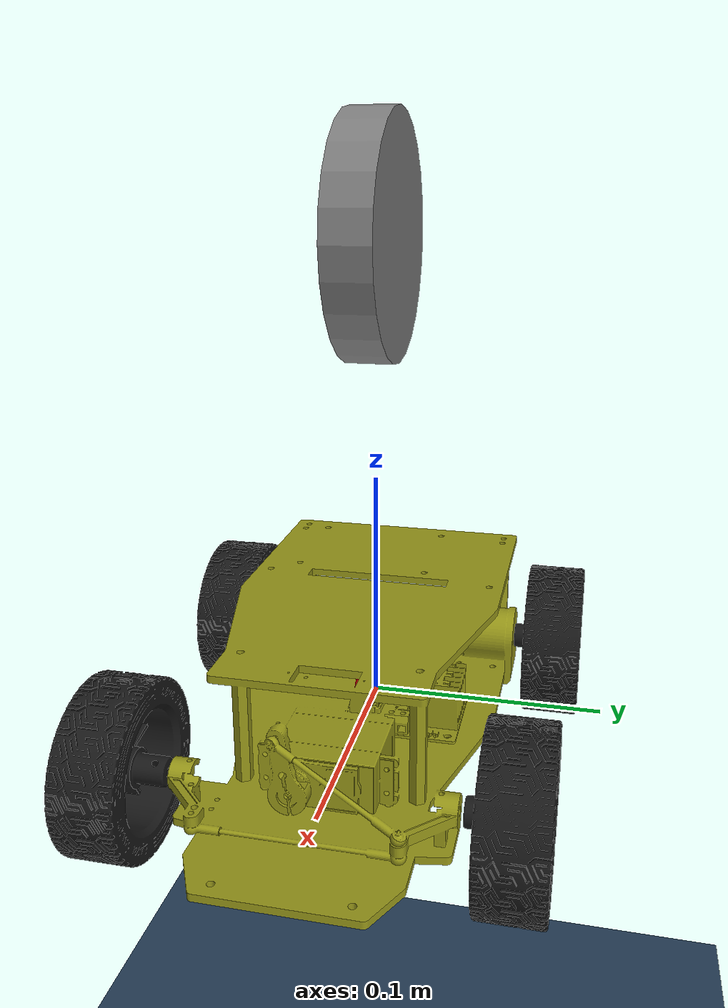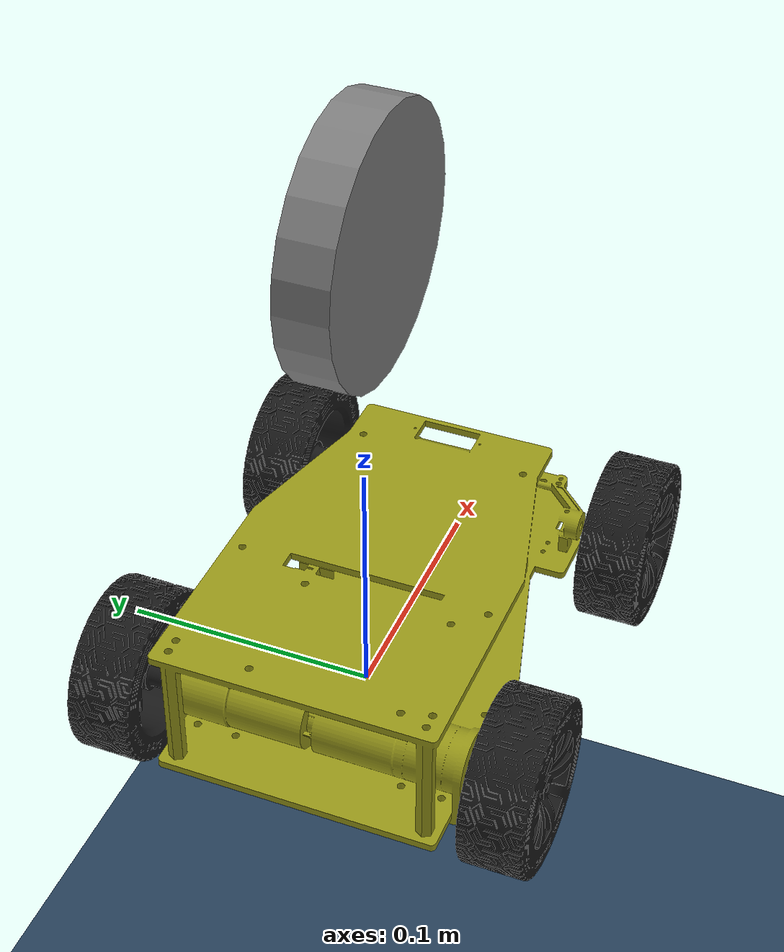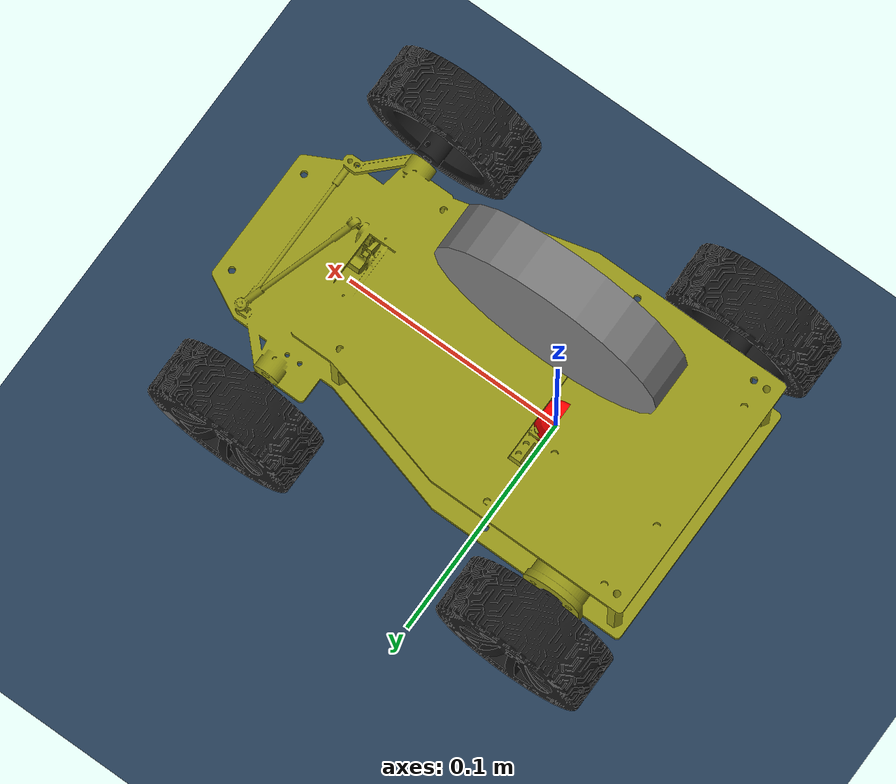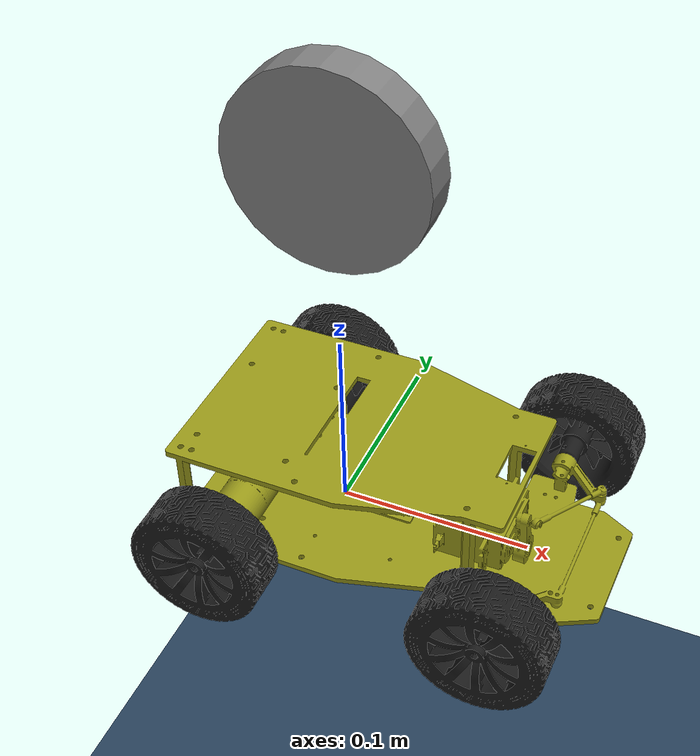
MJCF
<mujoco model="delorian_floored">

	<include file="Delorian.xml"/>

	<asset>
		<texture name="floor_tex" type="2d" builtin="checker" rgb1=".2 .3 .4" rgb2=".1 .2 .3" width="100" height="100" />
		<material name="floor_material" texture="floor_tex" texuniform="true" />
	</asset>

	<worldbody>
		<geom name="ground" type="plane" size="5 5 1" pos="0 0 -.25" material="floor_material"/>
	</worldbody>
</mujoco>

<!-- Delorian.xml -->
<mujoco model="delorian">

    <!-- Simulation settings -->
    <option timestep="0.002" gravity="0 0 -9.81"/>
    <compiler inertiafromgeom="true" angle="degree"/>

    <!-- Material -->
    <asset>
        <material name="MatWheel" specular="1" rgba=".1 .1 .1 1"/>
        <material name="MatBody"  specular="1" rgba=".6 .6 .1 1"/>

        <!-- STL meshes (Fusion exported in mm -> scale to meters) -->
        <mesh name="delorian_body_mesh" file="../meshes/Delorian_Base.stl" scale="0.001 0.001 0.001"/>
        <mesh name="left_wheel"        file="../meshes/Wheel_Left.stl"    scale="0.001 0.001 0.001"/>
        <mesh name="right_wheel"       file="../meshes/Wheel_Right.stl"   scale="0.001 0.001 0.001"/>
    </asset>

    <!-- Global defaults: all geoms collide unless explicitly disabled -->
    <default>
        <!-- contype/conaffinity = collision filter groups; 1 means "collide with others in group 1" -->
        <geom contype="1" conaffinity="1" friction="1.0 0.01 0.0005"/>
    </default>

    <!-- Viewer settings -->
    <visual>
        <headlight active="1"/>
        <scale camera=".5"/>
        <map znear="0.001" zfar="1000"/>
    </visual>

    <worldbody>
            <body name="rover" pos="0 0 0.0">

                <!-- Lighting and camera -->
                <light name="lamp" active="true" directional="true" cutoff="4" exponent="20"
                        diffuse="1 1 1" specular="0 0 0" pos="0 0 2.5" dir="0 0 -1"/>
                <camera name="first-person" mode="fixed" pos=".22 0 .08" euler="3.1416 -2.3213 -1.5708" fovy="90"/>

                <!-- Free-floating base -->
                <!-- The free joint is the only thing that allows the entire vehicle to move due to contact forces -->
                <joint name="centroid" type="free"/>

                <!-- CHASSIS -->
                <geom name="rover-body" type="mesh" mesh="delorian_body_mesh" pos="0 0 0" axisangle="0 0 1 -90.0" mass="3" material="MatBody"/>
                <site name="pivot_marker" type="sphere" pos="0 0 0" size="0.01" rgba="1 0 0 1"/>

                <!-- REAR WHEELS -->
                <!-- Rear-left wheel: spin joint about axle -->
                <body name="r-l-wheel" pos="-0.04000 0.05890 0.0135">
                    <joint name="r-l-drive-hinge" type="hinge" axis="0 1 0" damping="0.01"/>
                    <geom  name="r-l-wheel-geom" type="mesh" mesh="left_wheel" pos="0 0 0" axisangle="0 0 1 -90.0" mass="0.0125" material="MatWheel"/>
                </body>

                <!-- Rear-right wheel -->
                <body name="r-r-wheel" pos="-0.04000 -0.11000 0.0135">
                    <joint name="r-r-drive-hinge" type="hinge" axis="0 1 0" damping="0.01"/>
                    <geom  name="r-r-wheel-geom"  type="mesh"  mesh="right_wheel" pos="0 0 0" axisangle="0 0 1 -90.0" mass="0.0125" material="MatWheel"/>
                </body>

                <!-- GHOST STEERING WHEEL -->
                <!-- Ghost steering body: command this joint; equality maps it to front steering joints -->
                <body name="ghost-steer-wheel" pos="0 0 0.20">
                    <joint name="ghost-steer-hinge" type="hinge" axis="0 0 1"
                        limited="true" range="-0.29 0.29" damping="0.05"/>

                    <!-- Visual-only: disable collisions so it doesn't interact with rover/floor -->
                    <geom name="ghost-steer-geom" type="cylinder" size=".05 .01"
                        axisangle="1 0 0 90.0" contype="0" conaffinity="0" mass="0.05"/>
                </body>

                <!-- FRONT WHEELS -->

                <!-- Front-left steering knuckle/wheel -->
                <body name="f-l-wheel" pos="0.10240 0.05457 0.0135">
                    <inertial pos="0 0 0" mass="0.01" diaginertia="1e-6 1e-6 1e-6"/>
                    <joint name="f-l-steer-hinge" pos="0 0 0" type="hinge" axis="0 0 1" damping="0.01" limited="true" range="-30 30"/>

                    <body name="f-l-tyre">
                        <inertial pos="0 0.019377 0" mass="0.13839"/>
                        <joint name="f-l-spin" type="hinge" axis="0 1 0" damping="0.001"/>
                        <geom  name="f-l-wheel-geom"  type="mesh"  mesh="left_wheel" pos="0 0 0" axisangle="0 0 1 -90.0" mass="0.139" material="MatWheel"/>
                    </body>

                </body>

                <!-- Front-right steering knuckle/wheel -->
                <body name="f-r-wheel" pos="0.10240 -0.10657 0.0135">
                    <inertial pos="0 0 0" mass="0.01" diaginertia="1e-6 1e-6 1e-6"/>
                    <joint name="f-r-steer-hinge" pos="0 0 0" type="hinge" axis="0 0 1" damping="0.01" limited="true" range="-30 30"/>

                    <body name="f-r-tyre">
                        <inertial pos="0 0.019377 0" mass="0.13839"/>
                        <joint name="f-r-spin" type="hinge" axis="0 1 0" damping="0.001"/>
                        <geom  name="f-r-wheel-geom"  type="mesh"  mesh="right_wheel" pos="0 0 0" axisangle="0 0 1 -90.0" mass="0.139" material="MatWheel"/>
                    </body>
                </body>

            </body>
    </worldbody>

    <!-- Tendon: couples rear wheel spin joints (locked diff approximation) -->
    <tendon>
        <fixed name="rear-differential">
        <joint joint="r-l-drive-hinge" coef="1"/>
        <joint joint="r-r-drive-hinge" coef="1"/>
        </fixed>
    </tendon>

    <!-- Actuators -->
    <actuator>
        <!-- Position servo for ghost steering joint (PD-like internally) -->
        <position name="ghost-steer" joint="ghost-steer-hinge" ctrllimited="true" ctrlrange="-0.52 0.52" gear="1"/>
        <!-- Motor drives the rear differential tendon (applies torque to both rear wheels) -->
        <motor name="drive" tendon="rear-differential" ctrllimited="true" ctrlrange="-1.0 1.0" gear="1.5"/>
    </actuator>

    <!-- Equality constraints: Ackermann mapping from ghost steering angle -> front left/right steering angles -->
    <equality>
        <!-- Left wheel: slightly more angle than ghost (outer wheel in right turn) -->
        <joint name="ackermann_fl" joint1="f-l-steer-hinge" joint2="ghost-steer-hinge"
            polycoef="0 1.05 0 0 0"/>

        <!-- Right wheel: slightly less angle than ghost (inner wheel in right turn) -->
        <joint name="ackermann_fr" joint1="f-r-steer-hinge" joint2="ghost-steer-hinge"
            polycoef="0 0.95 0 0 0"/>
    </equality>

</mujoco>
